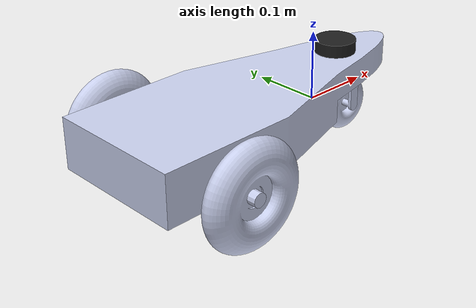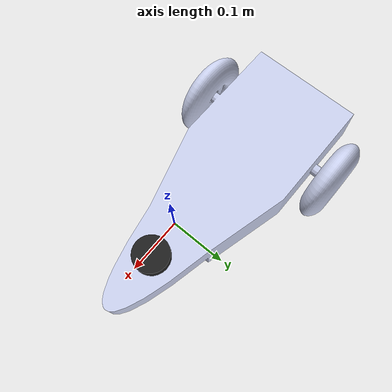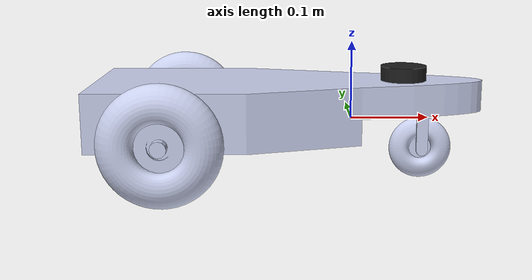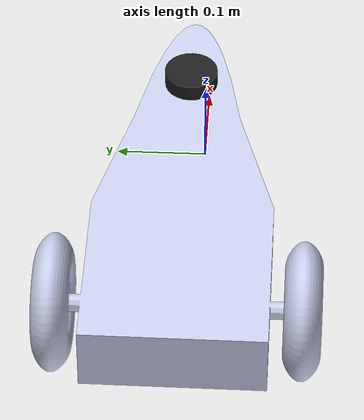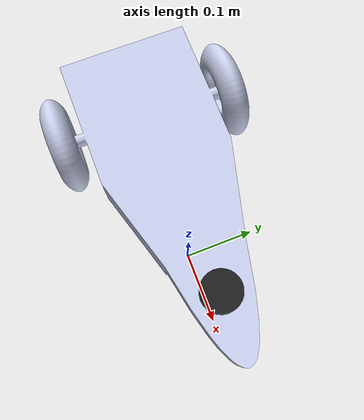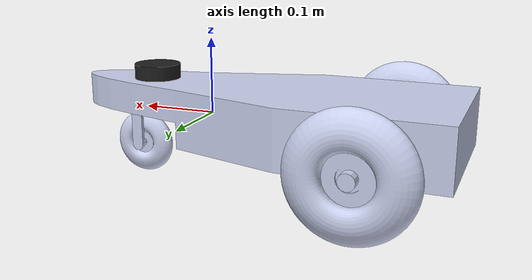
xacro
<?xml version="1.0"?>
<robot name="wheeled_robot" xmlns:xacro="http://www.ros.org/wiki/xacro">
  <xacro:include filename="$(find mobile_robot_description)/urdf/mobile_robot2.gazebo" />
  <xacro:include filename="$(find mobile_robot_description)/urdf/materials.xacro" />

  <link name="base_footprint">
    <inertial>
      <mass value="0.0001" />
      <origin xyz="0 0 0" />
      <inertia ixx="0.0001" ixy="0.0" ixz="0.0"
          iyy="0.0001" iyz="0.0"
          izz="0.0001" />
    </inertial>
    <visual>
        <origin xyz="0 0 0" rpy="0 0 0" />
        <geometry>
            <box size="0.001 0.001 0.001" />
        </geometry>
    </visual>
  </link>

  <gazebo reference="base_footprint">
    <turnGravityOff>false</turnGravityOff>
  </gazebo>

  <joint name="base_footprint_joint" type="fixed">
    <origin xyz="0 0 -0.0197397389092321" rpy="-1.5707 0 0" />
    <parent link="base_footprint"/>
    <child link="chassis" />
  </joint>

  <link name="chassis">
    <inertial>

      <origin
        xyz="-0.147460714742137 -0.0302705388894093 0.0197397389092321"
        rpy="0 0 0" />
      <mass
        value="5.28470193836214" />
      <inertia
        ixx="0.0172196936151484"
        ixy="0.00207025336305734"
        ixz="-0.000349261147912065"
        iyy="0.0883683584210481"
        iyz="8.82258104464462E-06"
        izz="0.0760293825469887" />
    </inertial>
    <visual>
      <origin
        xyz="0 0 0"
        rpy="0 0 0" />
      <geometry>
        <mesh
          filename="package://mobile_robot_description/meshes/chassis.STL" />
      </geometry>
      <material
        name="">
        <color
          rgba="0.792156862745098 0.819607843137255 0.933333333333333 1" />
      </material>
    </visual>
    <collision>
      <origin
        xyz="0 0 0"
        rpy="0 0 0" />
      <geometry>
        <mesh
          filename="package://mobile_robot_description/meshes/chassis.STL" />
      </geometry>
    </collision>
  </link>
  <link
    name="right_wheel">
    <inertial>
      <origin
        xyz="-0.0216872360293876 4.91273688396632E-15 2.49212142519606E-07"
        rpy="0 0 0" />
      <mass
        value="0.501600220937669" />
      <inertia
        ixx="0.00143563367410199"
        ixy="-1.52145813469872E-16"
        ixz="-5.81437685180484E-10"
        iyy="0.000767786397856862"
        iyz="-1.0842021724855E-19"
        izz="0.000767786397888015" />
    </inertial>
    <visual>
      <origin
        xyz="0 0 0"
        rpy="0 0 0" />
      <geometry>
        <mesh
          filename="package://mobile_robot_description/meshes/right_wheel.STL" />
      </geometry>
      <material
        name="">
        <color
          rgba="0.792156862745098 0.819607843137255 0.933333333333333 1" />
      </material>
    </visual>
    <collision>
      <origin
        xyz="0 0 0"
        rpy="0 0 0" />
      <geometry>
        <mesh
          filename="package://mobile_robot_description/meshes/right_wheel.STL" />
      </geometry>
    </collision>
  </link>
  <joint
    name="right_wheel_joint"
    type="continuous">
    <origin
      xyz="-0.232516893895987 -0.00992377145207874 -0.0943355033260453"
      rpy="1.57079 -1.5707963267949 0" />
    <parent
      link="chassis" />
    <child
      link="right_wheel" />
    <axis
      xyz="1 0 0" />
  </joint>
  <link
    name="left_wheel">
    <inertial>
      <origin
        xyz="0.0211606147695255 2.13717932240343E-15 2.49212143400845E-07"
        rpy="0 0 0" />
      <mass
        value="0.50160022093767" />
      <inertia
        ixx="0.00143563367410199"
        ixy="6.69005152138131E-17"
        ixz="-5.81437083891871E-10"
        iyy="0.000767786397856863"
        iyz="-1.35525271560688E-20"
        izz="0.000767786397888016" />
    </inertial>
    <visual>
      <origin
        xyz="0 0 0"
        rpy="0 0 0" />
      <geometry>
        <mesh
          filename="package://mobile_robot_description/meshes/left_wheel.STL" />
      </geometry>
      <material
        name="">
        <color
          rgba="0.792156862745098 0.819607843137255 0.933333333333333 1" />
      </material>
    </visual>
    <collision>
      <origin
        xyz="0 0 0"
        rpy="0 0 0" />
      <geometry>
        <mesh
          filename="package://mobile_robot_description/meshes/left_wheel.STL" />
      </geometry>
    </collision>
  </link>
  <joint
    name="left_wheel_joint"
    type="continuous">
    <origin
      xyz="-0.232516893895987 -0.0099237714521887 0.132816645875042"
      rpy="1.5707963267949 -1.5707963267949 0" />
    <parent
      link="chassis" />
    <child
      link="left_wheel" />
    <axis
      xyz="1 0 0" />
  </joint>
  <link
    name="holder">
    <inertial>
      <origin
        xyz="-7.91033905045424E-16 0.00167070427770837 0"
        rpy="0 0 0" />
      <mass
        value="0.0145605637508094" />
      <inertia
        ixx="7.06262048877384E-06"
        ixy="1.87686475973523E-18"
        ixz="-1.05879118412685E-21"
        iyy="3.15999848872344E-06"
        iyz="1.11672116017902E-21"
        izz="9.78305610352119E-06" />
    </inertial>
    <visual>
      <origin
        xyz="0 0 0"
        rpy="0 0 0" />
      <geometry>
        <mesh
          filename="package://mobile_robot_description/meshes/holder.STL" />
      </geometry>
      <material
        name="">
        <color
          rgba="0.792156862745098 0.819607843137255 0.933333333333333 1" />
      </material>
    </visual>
    <collision>
      <origin
        xyz="0 0 0"
        rpy="0 0 0" />
      <geometry>
        <mesh
          filename="package://mobile_robot_description/meshes/holder.STL" />
      </geometry>
    </collision>
  </link>
  <joint
    name="holder_joint"
    type="fixed">
    <origin
      xyz="0.0943608907023675 0 0.0192556511477779"
      rpy="-3.14159265358973 -1.57079 0" />
    <parent
      link="chassis" />
    <child
      link="holder" />
    <axis
      xyz="0 1 0" />
  </joint>
  <link
    name="front_wheel">
    <inertial>
      <origin
        xyz="-0.0005911395494715 -6.76188943588008E-08 -7.21490811124437E-06"
        rpy="0 0 0" />
      <mass
        value="0.07939886801277" />
      <inertia
        ixx="6.61465252204961E-05"
        ixy="6.02810543812606E-12"
        ixz="-2.05702274983285E-10"
        iyy="3.52805745190462E-05"
        iyz="5.7216274092266E-11"
        izz="3.52806223740297E-05" />
    </inertial>
    <visual>
      <origin
        xyz="0 0 0"
        rpy="0 0 0" />
      <geometry>
        <mesh
          filename="package://mobile_robot_description/meshes/front_wheel.STL" />
      </geometry>
      <material
        name="">
        <color
          rgba="0.792156862745098 0.819607843137255 0.933333333333333 1" />
      </material>
    </visual>
    <collision>
      <origin
        xyz="0 0 0"
        rpy="0 0 0" />
      <geometry>
        <mesh
          filename="package://mobile_robot_description/meshes/front_wheel.STL" />
      </geometry>
    </collision>
  </link>
  <joint
    name="front_wheel_joint"
    type="continuous">
    <origin
      xyz="0 -0.0248262285478683 0"
      rpy="-1.08610219202275 -2.49800180540668E-16 7.86938930123298E-17" />
    <parent
      link="holder" />
    <child
      link="front_wheel" />
    <axis
      xyz="1 0 0" />
  </joint>

<link name="front_sensor">
  <visual>
    <geometry>
      <cylinder length="0.03" radius="0.03"/>
    </geometry>
  </visual>
</link>
<joint name="front_sensor_joint" type="fixed">
  <parent link="chassis"/>
  <child link="front_sensor"/>
  <origin xyz="0.07 -0.07 0.02" rpy="-1.5707 0 0"/>
</joint>

</robot>
